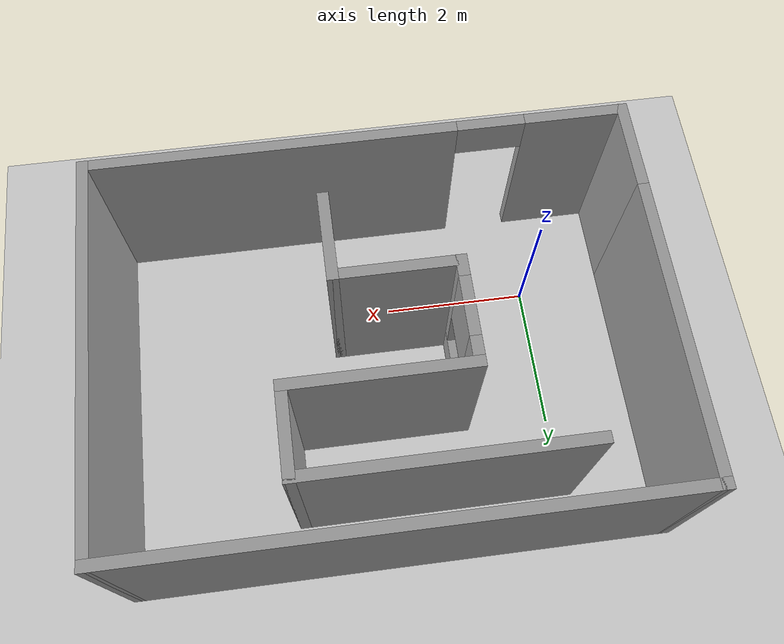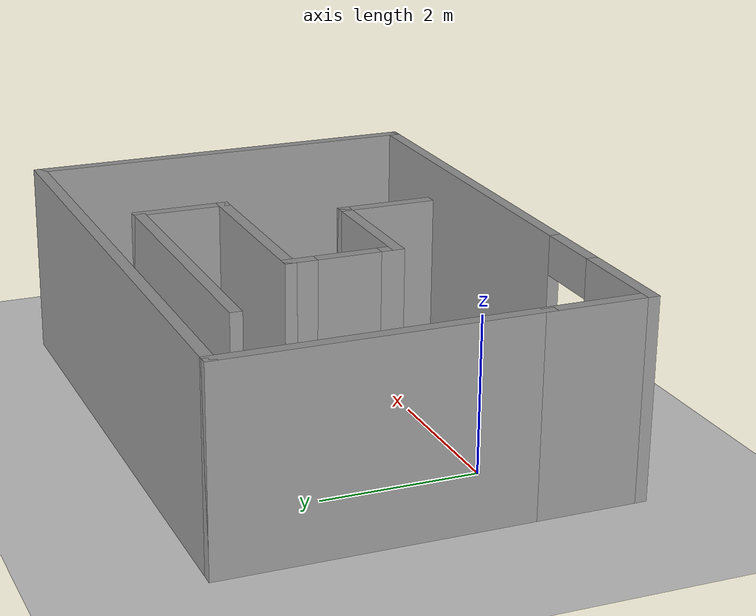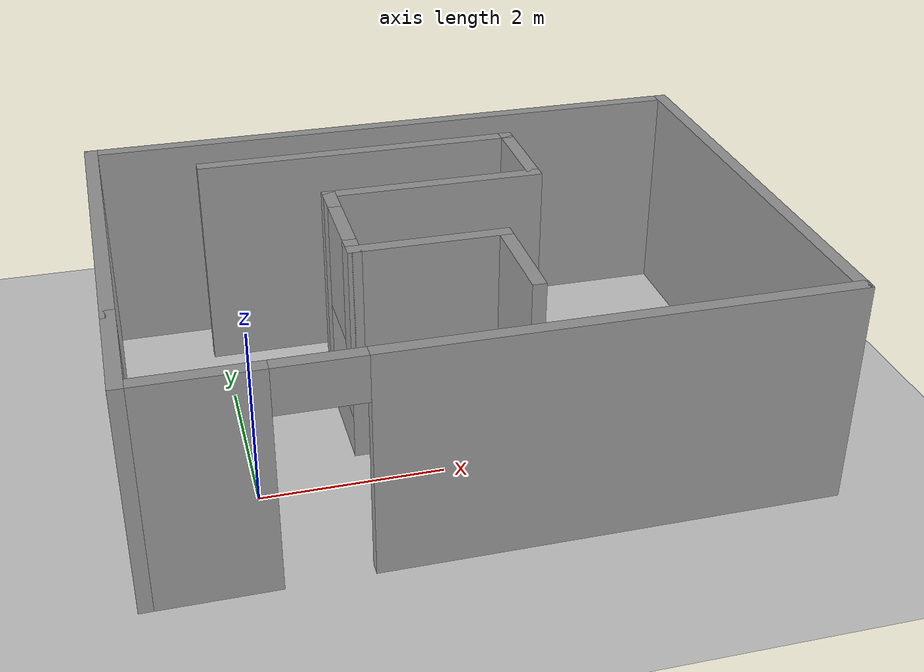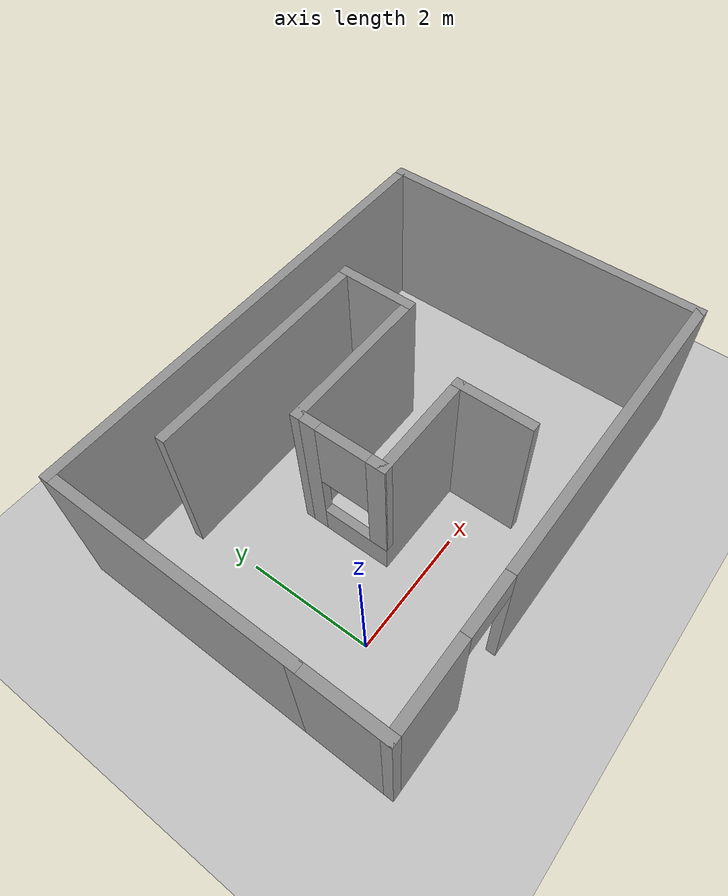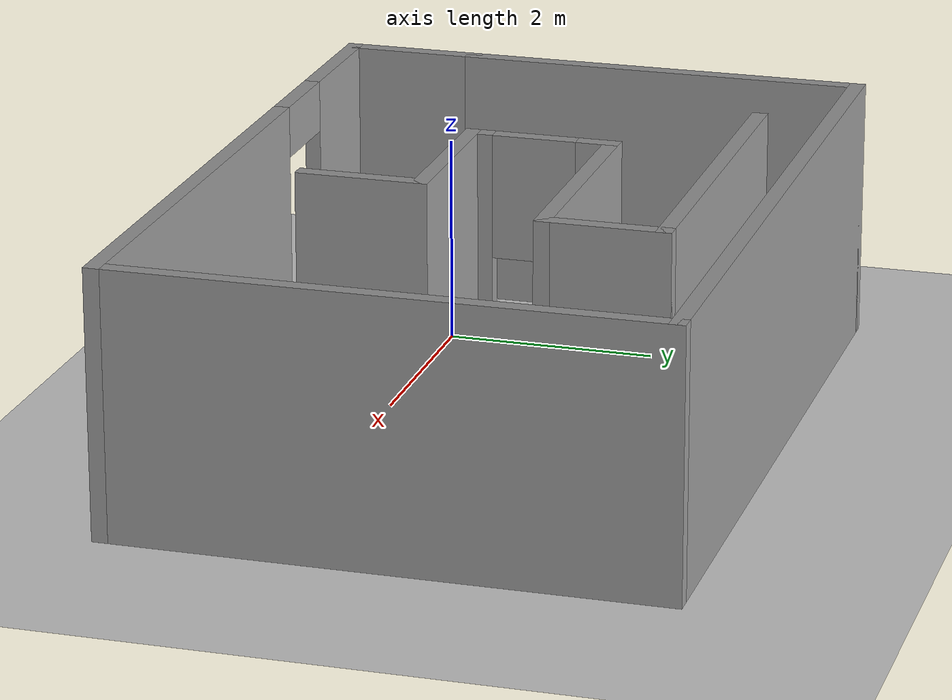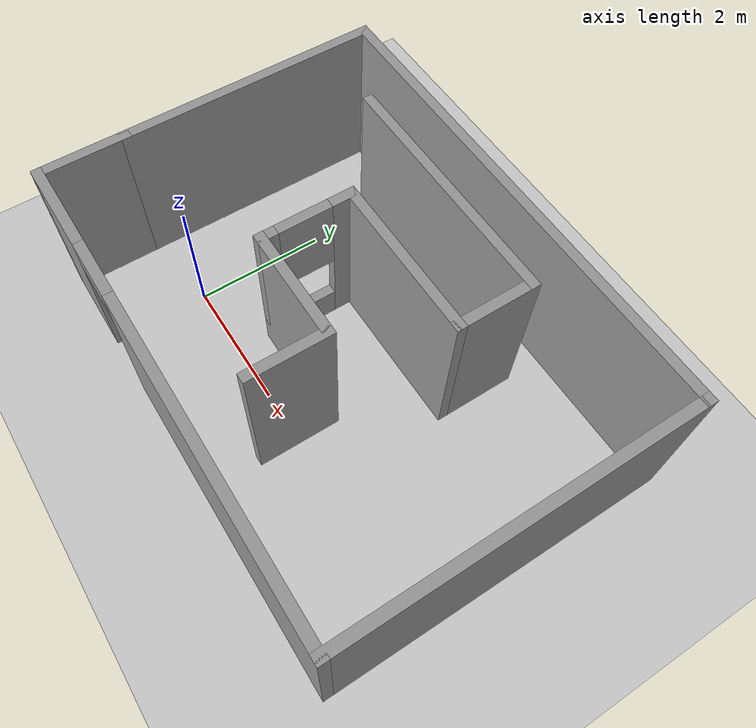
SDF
<sdf version="1.7">
 <world name="default">
  <light name="sun" type="directional">
   <pose>0 0 10 0 -0 0</pose>
   <diffuse>0.8 0.8 0.8 1</diffuse>
   <specular>0.2 0.2 0.2 1</specular>
   <attenuation>
    <range>1000</range>
    <constant>0.9</constant>
    <linear>0.01</linear>
    <quadratic>0.001</quadratic>
   </attenuation>
   <direction>-0.5 0.1 -0.9</direction>
   <spot><inner_angle>0</inner_angle><outer_angle>0</outer_angle><falloff>0</falloff></spot>
  </light>
  <model name="ground_plane">
   <static>1</static>
   <link name="link">
    <collision name="collision">
     <geometry><plane><normal>0 0 1</normal><size>100 100</size></plane></geometry>
     <surface><friction><ode><mu>100</mu><mu2>50</mu2></ode></friction></surface>
    </collision>
    <visual name="visual">
     <cast_shadows>0</cast_shadows>
     <geometry><plane><normal>0 0 1</normal><size>100 100</size></plane></geometry>
     <material>
      <script><uri>file://media/materials/scripts/gazebo.material</uri><name>Gazebo/Grey</name></script>
     </material>
    </visual>
   </link>
  </model>
  <gravity>0 0 -9.8</gravity>
  <magnetic_field>6e-06 2.3e-05 -4.2e-05</magnetic_field>
  <atmosphere type="adiabatic"/>
  <physics type="ode">
   <max_step_size>0.001</max_step_size>
   <real_time_factor>1</real_time_factor>
   <real_time_update_rate>1000</real_time_update_rate>
  </physics>
  <scene><ambient>0.4 0.4 0.4 1</ambient><background>0.7 0.7 0.7 1</background><shadows>1</shadows></scene>
  <audio><device>default</device></audio>
  <spherical_coordinates>
   <surface_model>EARTH_WGS84</surface_model>
   <latitude_deg>0</latitude_deg>
   <longitude_deg>0</longitude_deg>
   <elevation>0</elevation>
   <heading_deg>0</heading_deg>
  </spherical_coordinates>
  <model name="room2">
   <pose>2.27228 1.15037 0 0 -0 0</pose>
   <link name="Wall_0">
    <collision name="Wall_0_Collision">
     <geometry><box><size>4 0.15 2.5</size></box></geometry>
     <pose>0 0 1.25 0 -0 0</pose>
    </collision>
    <visual name="Wall_0_Visual">
     <pose>0 0 1.25 0 -0 0</pose>
     <geometry><box><size>4 0.15 2.5</size></box></geometry>
     <material>
      <script><uri>file://media/materials/scripts/gazebo.material</uri><name>Gazebo/Grey</name></script>
      <ambient>1 1 1 1</ambient>
     </material>
     <meta><layer>0</layer></meta>
    </visual>
    <pose>-3.55 0.625 0 0 -0 1.5708</pose>
   </link>
   <link name="Wall_1">
    <collision name="Wall_1_Collision">
     <geometry><box><size>7.25 0.15 2.5</size></box></geometry>
     <pose>0 0 1.25 0 -0 0</pose>
    </collision>
    <visual name="Wall_1_Visual">
     <pose>0 0 1.25 0 -0 0</pose>
     <geometry><box><size>7.25 0.15 2.5</size></box></geometry>
     <material>
      <script><uri>file://media/materials/scripts/gazebo.material</uri><name>Gazebo/Grey</name></script>
      <ambient>1 1 1 1</ambient>
     </material>
     <meta><layer>0</layer></meta>
    </visual>
    <pose>-0 2.55 0 0 -0 0</pose>
   </link>
   <link name="Wall_10">
    <collision name="Wall_10_Collision">
     <geometry><box><size>1.75 0.15 2.5</size></box></geometry>
     <pose>0 0 1.25 0 -0 0</pose>
    </collision>
    <visual name="Wall_10_Visual">
     <pose>0 0 1.25 0 -0 0</pose>
     <geometry><box><size>1.75 0.15 2.5</size></box></geometry>
     <material>
      <script><uri>file://media/materials/scripts/gazebo.material</uri><name>Gazebo/Grey</name></script>
      <ambient>1 1 1 1</ambient>
     </material>
     <meta><layer>0</layer></meta>
    </visual>
    <pose>-0.277061 -0.58847 0 0 -0 0</pose>
   </link>
   <link name="Wall_11">
    <collision name="Wall_11_Collision">
     <geometry><box><size>1.25 0.15 2.5</size></box></geometry>
     <pose>0 0 1.25 0 -0 0</pose>
    </collision>
    <visual name="Wall_11_Visual">
     <pose>0 0 1.25 0 -0 0</pose>
     <geometry><box><size>1.25 0.15 2.5</size></box></geometry>
     <material>
      <script><uri>file://media/materials/scripts/gazebo.material</uri><name>Gazebo/Grey</name></script>
      <ambient>1 1 1 1</ambient>
     </material>
     <meta><layer>0</layer></meta>
    </visual>
    <pose>0.522938 -1.13847 0 0 -0 -1.5708</pose>
   </link>
   <link name="Wall_2">
    <collision name="Wall_2_Collision">
     <geometry><box><size>5.25 0.15 2.5</size></box></geometry>
     <pose>0 0 1.25 0 -0 0</pose>
    </collision>
    <visual name="Wall_2_Visual">
     <pose>0 0 1.25 0 -0 0</pose>
     <geometry><box><size>5.25 0.15 2.5</size></box></geometry>
     <material>
      <script><uri>file://media/materials/scripts/gazebo.material</uri><name>Gazebo/Grey</name></script>
      <ambient>1 1 1 1</ambient>
     </material>
     <meta><layer>0</layer></meta>
    </visual>
    <pose>3.55 0 0 0 -0 -1.5708</pose>
   </link>
   <link name="Wall_3">
    <pose>-0 -2.55 0 0 -0 3.14159</pose>
    <visual name="Wall_3_Visual_0">
     <pose>-1.1455 0 1.25 0 -0 0</pose>
     <geometry><box><size>4.95899 0.15 2.5</size></box></geometry>
     <material>
      <script><uri>file://media/materials/scripts/gazebo.material</uri><name>Gazebo/Grey</name></script>
      <ambient>1 1 1 1</ambient>
     </material>
     <meta><layer>0</layer></meta>
    </visual>
    <collision name="Wall_3_Collision_0">
     <geometry><box><size>4.95899 0.15 2.5</size></box></geometry>
     <pose>-1.1455 0 1.25 0 -0 0</pose>
    </collision>
    <visual name="Wall_3_Visual_1">
     <pose>2.9295 0 1.25 0 -0 0</pose>
     <geometry><box><size>1.39101 0.15 2.5</size></box></geometry>
     <material>
      <script><uri>file://media/materials/scripts/gazebo.material</uri><name>Gazebo/Grey</name></script>
      <ambient>1 1 1 1</ambient>
     </material>
     <meta><layer>0</layer></meta>
    </visual>
    <collision name="Wall_3_Collision_1">
     <geometry><box><size>1.39101 0.15 2.5</size></box></geometry>
     <pose>2.9295 0 1.25 0 -0 0</pose>
    </collision>
    <visual name="Wall_3_Visual_2">
     <pose>1.78399 0 2.25 0 -0 0</pose>
     <geometry><box><size>0.9 0.15 0.5</size></box></geometry>
     <material>
      <script><uri>file://media/materials/scripts/gazebo.material</uri><name>Gazebo/Grey</name></script>
      <ambient>1 1 1 1</ambient>
     </material>
     <meta><layer>0</layer></meta>
    </visual>
    <collision name="Wall_3_Collision_2">
     <geometry><box><size>0.9 0.15 0.5</size></box></geometry>
     <pose>1.78399 0 2.25 0 -0 0</pose>
    </collision>
   </link>
   <link name="Wall_4">
    <collision name="Wall_4_Collision">
     <geometry><box><size>1.4 0.15 2.5</size></box></geometry>
     <pose>0 0 1.25 0 -0 0</pose>
    </collision>
    <visual name="Wall_4_Visual">
     <pose>0 0 1.25 0 -0 0</pose>
     <geometry><box><size>1.4 0.15 2.5</size></box></geometry>
     <material>
      <script><uri>file://media/materials/scripts/gazebo.material</uri><name>Gazebo/Grey</name></script>
      <ambient>1 1 1 1</ambient>
     </material>
     <meta><layer>0</layer></meta>
    </visual>
    <pose>-3.55 -1.925 0 0 -0 1.5708</pose>
   </link>
   <link name="Wall_6">
    <collision name="Wall_6_Collision">
     <geometry><box><size>3.75 0.15 2.5</size></box></geometry>
     <pose>0 0 1.25 0 -0 0</pose>
    </collision>
    <visual name="Wall_6_Visual">
     <pose>0 0 1.25 0 -0 0</pose>
     <geometry><box><size>3.75 0.15 2.5</size></box></geometry>
     <material>
      <script><uri>file://media/materials/scripts/gazebo.material</uri><name>Gazebo/Grey</name></script>
      <ambient>1 1 1 1</ambient>
     </material>
     <meta><layer>0</layer></meta>
    </visual>
    <pose>-0.527061 1.86153 0 0 -0 0</pose>
   </link>
   <link name="Wall_7">
    <collision name="Wall_7_Collision">
     <geometry><box><size>1.25 0.15 2.5</size></box></geometry>
     <pose>0 0 1.25 0 -0 0</pose>
    </collision>
    <visual name="Wall_7_Visual">
     <pose>0 0 1.25 0 -0 0</pose>
     <geometry><box><size>1.25 0.15 2.5</size></box></geometry>
     <material>
      <script><uri>file://media/materials/scripts/gazebo.material</uri><name>Gazebo/Grey</name></script>
      <ambient>1 1 1 1</ambient>
     </material>
     <meta><layer>0</layer></meta>
    </visual>
    <pose>1.27294 1.31153 0 0 -0 -1.5708</pose>
   </link>
   <link name="Wall_8">
    <collision name="Wall_8_Collision">
     <geometry><box><size>2.5 0.15 2.5</size></box></geometry>
     <pose>0 0 1.25 0 -0 0</pose>
    </collision>
    <visual name="Wall_8_Visual">
     <pose>0 0 1.25 0 -0 0</pose>
     <geometry><box><size>2.5 0.15 2.5</size></box></geometry>
     <material>
      <script><uri>file://media/materials/scripts/gazebo.material</uri><name>Gazebo/Grey</name></script>
      <ambient>1 1 1 1</ambient>
     </material>
     <meta><layer>0</layer></meta>
    </visual>
    <pose>0.097939 0.76153 0 0 -0 3.14159</pose>
   </link>
   <link name="Wall_9">
    <pose>-1.07706 0.08653 0 0 -0 -1.5708</pose>
    <visual name="Wall_9_Visual_0">
     <pose>-0.547332 0 1.25 0 -0 0</pose>
     <geometry><box><size>0.405335 0.15 2.5</size></box></geometry>
     <material>
      <script><uri>file://media/materials/scripts/gazebo.material</uri><name>Gazebo/Grey</name></script>
      <ambient>1 1 1 1</ambient>
     </material>
     <meta><layer>0</layer></meta>
    </visual>
    <collision name="Wall_9_Collision_0">
     <geometry><box><size>0.405335 0.15 2.5</size></box></geometry>
     <pose>-0.547332 0 1.25 0 -0 0</pose>
    </collision>
    <visual name="Wall_9_Visual_1">
     <pose>0.202668 0 0.25 0 -0 0</pose>
     <geometry><box><size>1.09466 0.15 0.5</size></box></geometry>
     <material>
      <script><uri>file://media/materials/scripts/gazebo.material</uri><name>Gazebo/Grey</name></script>
      <ambient>1 1 1 1</ambient>
     </material>
     <meta><layer>0</layer></meta>
    </visual>
    <collision name="Wall_9_Collision_1">
     <geometry><box><size>1.09466 0.15 0.5</size></box></geometry>
     <pose>0.202668 0 0.25 0 -0 0</pose>
    </collision>
    <visual name="Wall_9_Visual_2">
     <pose>0.602668 0 1.5 0 -0 0</pose>
     <geometry><box><size>0.294665 0.15 2</size></box></geometry>
     <material>
      <script><uri>file://media/materials/scripts/gazebo.material</uri><name>Gazebo/Grey</name></script>
      <ambient>1 1 1 1</ambient>
     </material>
     <meta><layer>0</layer></meta>
    </visual>
    <collision name="Wall_9_Collision_2">
     <geometry><box><size>0.294665 0.15 2</size></box></geometry>
     <pose>0.602668 0 1.5 0 -0 0</pose>
    </collision>
    <visual name="Wall_9_Visual_3">
     <pose>0.055335 0 1.9 0 -0 0</pose>
     <geometry><box><size>0.8 0.15 1.2</size></box></geometry>
     <material>
      <script><uri>file://media/materials/scripts/gazebo.material</uri><name>Gazebo/Grey</name></script>
      <ambient>1 1 1 1</ambient>
     </material>
     <meta><layer>0</layer></meta>
    </visual>
    <collision name="Wall_9_Collision_3">
     <geometry><box><size>0.8 0.15 1.2</size></box></geometry>
     <pose>0.055335 0 1.9 0 -0 0</pose>
    </collision>
   </link>
   <static>1</static>
  </model>
 </world>
</sdf>
